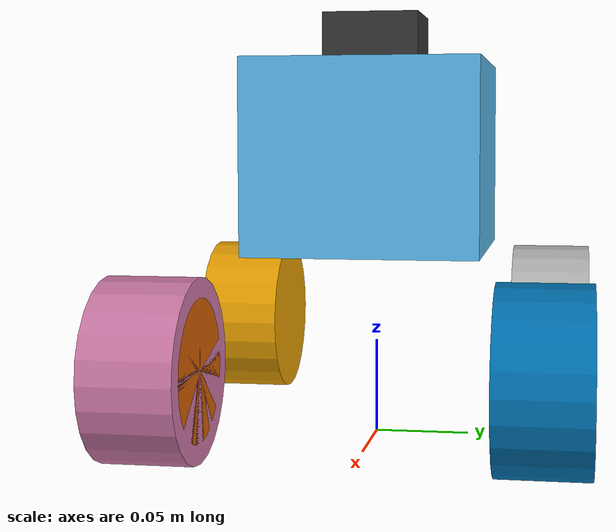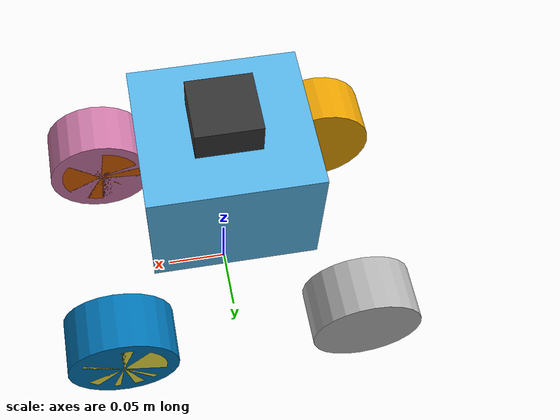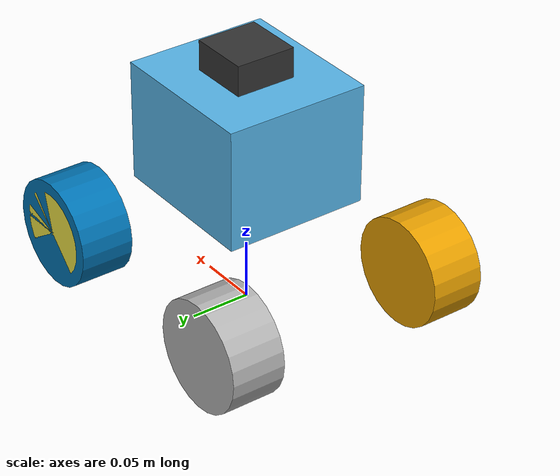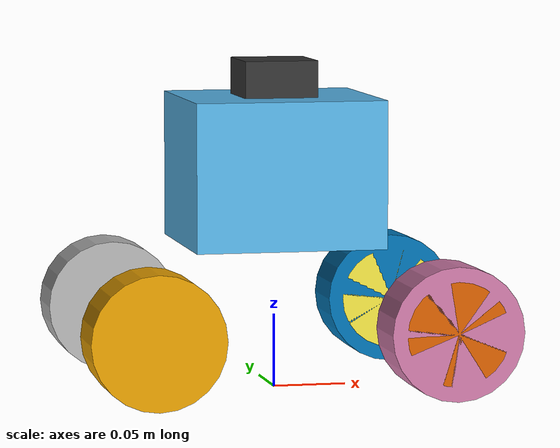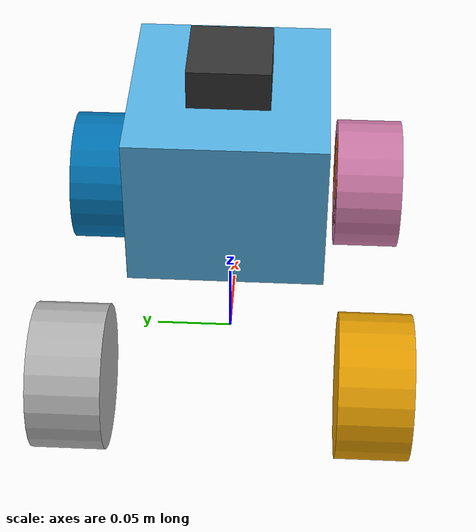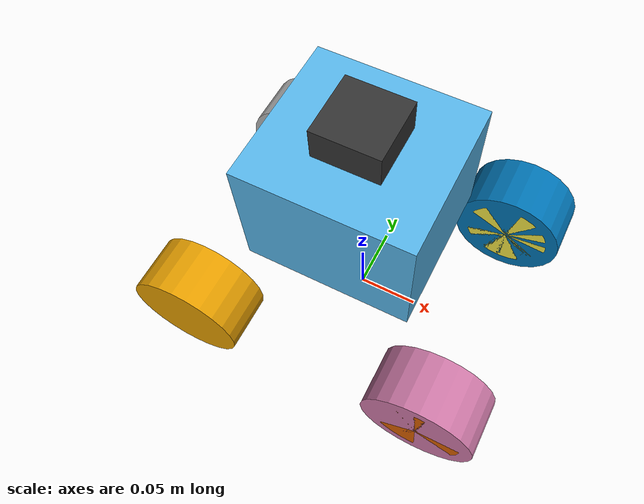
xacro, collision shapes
<?xml version="1.0"?>
<robot xmlns:xacro="http://www.ros.org/wiki/xacro" name="limo_with_mid360">
  <xacro:arg name="sensor_namespace" default="limo"/>

  <!-- Include Limo Ackermann Base -->
  <xacro:include filename="$(find simple_rbt)/model/limo/urdf/limo_ackerman.xacro"/>

  <!-- Include Mid360 Sensor -->
  <xacro:include filename="$(find simple_rbt)/model/sensor/simple_mid360/model.xacro"/>

  <xacro:simple_mid360
    parent_link="base_link"
    xyz="0.0 0.0 0.05"
    rpy="0 0 0"
    sensor_namespace="$(arg sensor_namespace)"
  />

</robot>

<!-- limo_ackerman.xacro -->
<robot name="limo_ackerman" xmlns:xacro="http://ros.org/wiki/xacro">

    <xacro:arg name="robot_namespace" default="/" />
    <xacro:include filename="$(find simple_rbt)/model/limo/urdf/limo_xacro.xacro" />
    <xacro:include filename="$(find simple_rbt)/model/limo/urdf/limo_steering_hinge.xacro" />
    <xacro:include filename="$(find simple_rbt)/model/limo/urdf/limo_ackerman.gazebo" />

    <!-- Variables -->
    <xacro:property name="M_PI" value="3.14159"/>

    <!-- Vehicle Geometries -->
    <xacro:property name="base_x_size" value="0.13" />
    <xacro:property name="base_y_size" value="0.12" />
    <xacro:property name="base_z_size" value="0.10" />

    <xacro:property name="wheelbase" value="0.2"/>
    <xacro:property name="track" value="0.14"/>
    <xacro:property name="wheel_vertical_offset" value="-0.100998" />
    <xacro:property name="base_mass" value="2.1557"/>

    <xacro:property name="wheel_length" value="0.045" />
    <xacro:property name="wheel_radius" value="0.045" />
    <link name="base_footprint"/>

    <joint name="base_joint" type="fixed">
    <parent link="base_footprint"/>
    <child link="base_link"/>
    <origin xyz="0.0 0.0 0.15" rpy="0 0 0"/>
    </joint>
    <!-- Base link -->
    <link name="base_link">
        <visual>
            <origin xyz="0 0 -0.15" rpy="0 0 1.57" />
            <geometry>
                <mesh filename="package://simple_rbt/model/limo/meshes/limo_base.dae" scale="1 1 1"/>
            </geometry>
        </visual>
        <collision>
            <origin xyz="0 0 0" rpy="0 0 0" />
          <geometry>
              <box size="${base_x_size} ${base_y_size} ${base_z_size}"/>
          </geometry>
        </collision>
    </link>

    <link name="inertial_link">
        <inertial>
            <origin xyz="0.0 0.0 0.0" />
            <mass value="${base_mass}" />
            <inertia ixx="0.24" ixy="0" ixz="0"
                     iyy="0.96" iyz="0"
                     izz="0.96" />
        </inertial>
    </link>

    <joint name="inertial_joint" type="fixed">
        <origin xyz="0 0 0" rpy="0 0 0" />
        <parent link="base_link" />
        <child link="inertial_link" />
    </joint>

    <xacro:limo_left_steering_hinge parent_prefix="base_link" wheel_prefix="left_steering_hinge">
        <origin xyz="${wheelbase/2} ${track/2} ${wheel_vertical_offset}" rpy="0 0  0" />
    </xacro:limo_left_steering_hinge>

    <xacro:limo_right_steering_hinge parent_prefix="base_link" wheel_prefix="right_steering_hinge">
        <origin xyz="${wheelbase/2} ${-track/2} ${wheel_vertical_offset}" rpy="${M_PI} 0 0" />
    </xacro:limo_right_steering_hinge>

    <link name="rear_left_wheel_link">
        <inertial>
            <origin xyz="0 0 0" />
            <mass value="0.5" />
            <inertia ixx="0.01055" ixy="0" ixz="0" iyy="0.00075" iyz="0" izz="0.01055" />
        </inertial>
        <visual>
            <origin xyz="0 0 0" rpy="0 0 0" />
            <geometry>
                <mesh filename="package://simple_rbt/model/limo/meshes/limo_wheel.dae" />
            </geometry>
        </visual>
        <collision>
            <origin xyz="0 ${wheel_length/2} 0" rpy="1.57 0 0" />
          <geometry>
              <cylinder length="${wheel_length}" radius="${wheel_radius}" />
          </geometry>
        </collision>
    </link>
    <joint name="rear_left_wheel" type="continuous">
        <parent link="base_link"/>
        <child link="rear_left_wheel_link"/>
        <origin xyz="${-wheelbase/2} ${track/2} ${wheel_vertical_offset}" rpy="0 0 0" />
        <axis xyz="0 1 0"/>
    </joint>

    <link name="rear_right_wheel_link">
        <inertial>
            <origin xyz="0 0 0" />
            <mass value="0.5" />
            <inertia ixx="0.01055" ixy="0" ixz="0" iyy="0.00075" iyz="0" izz="0.01055" />
        </inertial>
        <visual>
            <origin xyz="0 0 0" rpy="0 0 0" />
            <geometry>
                <mesh filename="package://simple_rbt/model/limo/meshes/limo_wheel.dae" />
            </geometry>
        </visual>
            <collision>
                <origin xyz="0 ${wheel_length/2} 0" rpy="1.57 0 0" />
              <geometry>
                  <cylinder length="${wheel_length}" radius="${wheel_radius}" />
              </geometry>
            </collision>
        </link>

        <joint name="rear_right_wheel" type="continuous">
            <parent link="base_link"/>
            <child link="rear_right_wheel_link"/>
            <origin xyz="${-wheelbase/2} ${-track/2} ${wheel_vertical_offset}" rpy="${M_PI} 0 0" />
            <axis xyz="0 -1 0"/>
        </joint>
</robot>

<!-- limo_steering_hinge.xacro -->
<robot name="limo_steering_hinge" xmlns:xacro="http://ros.org/wiki/xacro">

    <xacro:macro name="limo_left_steering_hinge" params="parent_prefix wheel_prefix *joint_pose">
        <link name="${wheel_prefix}">
            <inertial>
              <mass value="0.25" />
              <inertia ixx="0.00525" ixy="0" ixz="0" iyy="0.00035" iyz="0" izz="0.00525" />
              <origin xyz="0 0 0" />

            </inertial>
            <visual>
                <origin xyz="0 0 0" rpy="0 0 0" />
                <geometry>
                  <cylinder length="0.0001" radius="0.0001" />
                </geometry>
            </visual>
            <collision>
              <origin xyz="0 ${wheel_length/2} 0" rpy="1.57 0 0" />
              <geometry>
                  <cylinder length="${wheel_length}" radius="${wheel_radius-0.01}" />
              </geometry>
            </collision>
        </link>

        <joint name="${wheel_prefix}_wheel" type="revolute">
            <parent link="${parent_prefix}"/>
            <child link="${wheel_prefix}"/>
            <xacro:insert_block name="joint_pose"/>
            <axis xyz="0 0 1" />
            <limit lower="-0.523598767" upper="0.523598767" effort="5" velocity="0.5" />
            <dynamics damping="1.0" friction="2.0"/>

        </joint>

        <link name="front_left_wheel_link">
          <inertial>
            <mass value="0.25" />
            <inertia ixx="0.00525" ixy="0" ixz="0" iyy="0.00035" iyz="0" izz="0.00525" />
            <origin xyz="0 0 0" />

          </inertial>
          <visual>
              <origin xyz="0 0 0" rpy="0 0 0" />
              <geometry>
                  <mesh filename="package://simple_rbt/model/limo/meshes/limo_wheel.dae" />
              </geometry>
          </visual>
          <collision>
            <origin xyz="0 ${wheel_length/2} 0" rpy="1.57 0 0" />
            <geometry>
                <cylinder length="${wheel_length}" radius="${wheel_radius}" />
            </geometry>
          </collision>
      </link>

      <joint name="front_left_wheel" type="continuous">
          <parent link="${wheel_prefix}"/>
          <child link="front_left_wheel_link"/>
          <origin xyz="0 0 0" rpy="0 0  0" />
          <axis xyz="0 1 0"/>
      </joint>
    </xacro:macro>

    <xacro:macro name="limo_right_steering_hinge" params="parent_prefix wheel_prefix *joint_pose">
        <link name="${wheel_prefix}">
          <inertial>
            <mass value="0.25" />
            <inertia ixx="0.00525" ixy="0" ixz="0" iyy="0.00035" iyz="0" izz="0.00525" />
            <origin xyz="0 0 0" />

          </inertial>
            <visual>
                <origin xyz="0 0 0" rpy="0 0 0" />
                <geometry>
                  <cylinder length="0.0001" radius="0.0001" />
                </geometry>
            </visual>
            <collision>
              <origin xyz="0 ${wheel_length/2} 0" rpy="1.57 0 0" />
              <geometry>
                  <cylinder length="${wheel_length}" radius="${wheel_radius-0.01}" />
              </geometry>
            </collision>
        </link>

        <joint name="${wheel_prefix}_wheel" type="revolute">
            <parent link="${parent_prefix}"/>
            <child link="${wheel_prefix}"/>
            <xacro:insert_block name="joint_pose"/>
            <axis xyz="0 0 -1"/>
            <limit lower="-0.523598767" upper="0.523598767" effort="5" velocity="0.5" />
            <dynamics damping="1.0" friction="2.0"/>
        </joint>

        <link name="front_right_wheel_link">
          <inertial>
            <mass value="0.25" />
            <inertia ixx="0.00525" ixy="0" ixz="0" iyy="0.00035" iyz="0" izz="0.00525" />
            <origin xyz="0 0 0" />
          </inertial>
          <visual>
              <origin xyz="0 0 0" rpy="0 0 0" />
              <geometry>
                  <mesh filename="package://simple_rbt/model/limo/meshes/limo_wheel.dae" />
              </geometry>
          </visual>
          <collision>
            <origin xyz="0 ${wheel_length/2} 0" rpy="1.57 0 0" />
            <geometry>
                <cylinder length="${wheel_length}" radius="${wheel_radius}" />
            </geometry>
          </collision>
      </link>

      <joint name="front_right_wheel" type="continuous">
          <parent link="${wheel_prefix}"/>
          <child link="front_right_wheel_link"/>
          <origin xyz="0 0 0" rpy="0 0  0" />
          <axis xyz="0 -1 0"/>
      </joint>
    </xacro:macro>
</robot>

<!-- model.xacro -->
<robot xmlns:xacro="http://www.ros.org/wiki/xacro">

    <xacro:macro name="simple_mid360" params="parent_link xyz rpy sensor_namespace">

        <link name="livox_link">
            <inertial>
                <mass value="0.1"/>
                <inertia ixx="0.0001" ixy="0.0" ixz="0.0" iyy="0.0001" iyz="0.0" izz="0.0001"/>
            </inertial>

            <collision name="lidar_collision">
                <geometry>
                    <box size="0.05 0.05 0.05"/>
                </geometry>
            </collision>

            <visual name="lidar_visual">
                <geometry>
                    <box size="0.05 0.05 0.05"/>
                </geometry>
                <material name="dark_gray">
                    <color rgba="0.2 0.2 0.2 1"/>
                </material>
            </visual>
        </link>

        <link name="imu_link">
            <inertial>
                <mass value="0.01"/>
                <inertia ixx="1e-6" ixy="0.0" ixz="0.0" iyy="1e-6" iyz="0.0" izz="1e-6"/>
            </inertial>

            <visual name="imu_visual">
                <geometry>
                    <box size="0.01 0.01 0.01"/>
                </geometry>
                <material name="red_imu">
                    <color rgba="0.8 0.2 0.2 1"/>
                </material>
            </visual>
        </link>

        <joint name="livox_mount_joint" type="fixed">
            <parent link="${parent_link}"/>
            <child link="livox_link"/>
            <origin xyz="${xyz}" rpy="${rpy}"/>
        </joint>

        <joint name="livox_imu_joint" type="fixed">
            <parent link="livox_link"/>
            <child link="imu_link"/>
            <origin xyz="0.011 0.02329 -0.04412" rpy="0 0 0"/>
        </joint>

        <gazebo reference="livox_link">
            <sensor type="ray" name="laser_livox">
                <pose>0 0 0.05 0 0 0</pose>
                <visualize>false</visualize>
                <always_on>true</always_on>
                <update_rate>10</update_rate>

                <plugin name="gazebo_ros_laser_controller" filename="liblivox_laser_simulation.so">
                    <robotNamespace>${sensor_namespace}</robotNamespace>
                    <ray>
                        <scan>
                            <horizontal>
                                <samples>100</samples>
                                <resolution>1</resolution>
                                <min_angle>-3.1415926535897931</min_angle>
                                <max_angle>3.1415926535897931</max_angle>
                            </horizontal>
                            <vertical>
                                <samples>50</samples>
                                <resolution>1</resolution>
                                <min_angle>-3.1415926535897931</min_angle>
                                <max_angle>3.1415926535897931</max_angle>
                            </vertical>
                        </scan>
                        <range>
                            <min>0.1</min>
                            <max>40</max>
                            <resolution>1</resolution>
                        </range>
                        <noise>
                            <type>gaussian</type>
                            <mean>0.0</mean>
                            <stddev>0.0</stddev>
                        </noise>
                    </ray>

                    <visualize>true</visualize>
                    <samples>20000</samples>
                    <downsample>1</downsample>
                    <csv_file_name>mid360-real-centr.csv</csv_file_name>
                    <publish_pointcloud_type>3</publish_pointcloud_type>
                    <ros_topic>livox/lidar</ros_topic>
                    <frameName>livox_link</frameName>
                </plugin>
            </sensor>
            <material>Gazebo/DarkGray</material>
        </gazebo>

        <gazebo reference="imu_link">
            <sensor name="imu_sensor" type="imu">
                <pose>0 0 0 0 0 0</pose>
                <always_on>true</always_on>
                <update_rate>200</update_rate>
                <visualize>true</visualize>
                <topic>__default_topic__</topic>

                <plugin filename="libgazebo_ros_imu_sensor.so" name="imu_plugin">
                    <robotNamespace>${sensor_namespace}</robotNamespace>
                    <topicName>livox/imu</topicName>
                    <bodyName>imu_link</bodyName>
                    <updateRateHZ>200.0</updateRateHZ>
                    <gaussianNoise>0.0</gaussianNoise>
                    <xyzOffset>0 0 0</xyzOffset>
                    <rpyOffset>0 0 0</rpyOffset>
                    <frameName>imu_link</frameName>
                </plugin>
            </sensor>
            <material>Gazebo/Red</material>
        </gazebo>

    </xacro:macro>

</robot>
